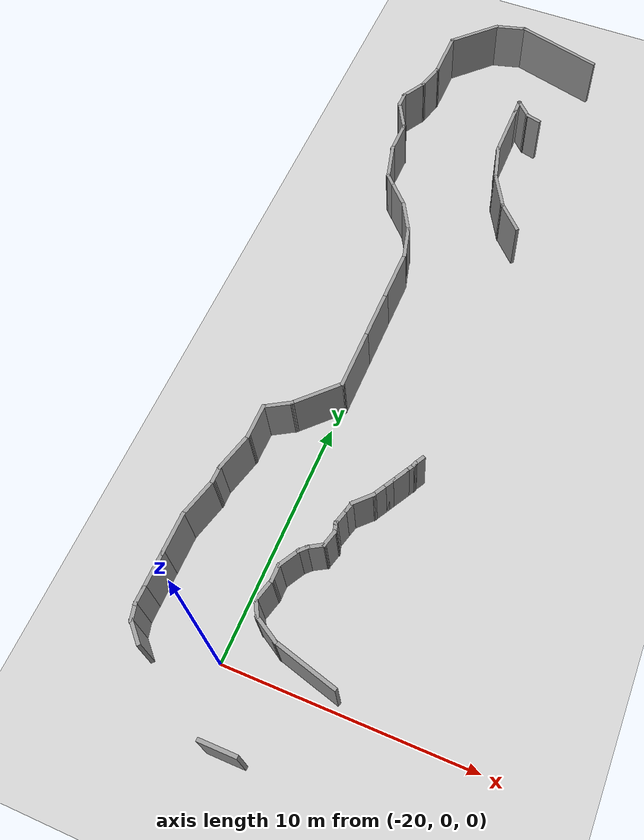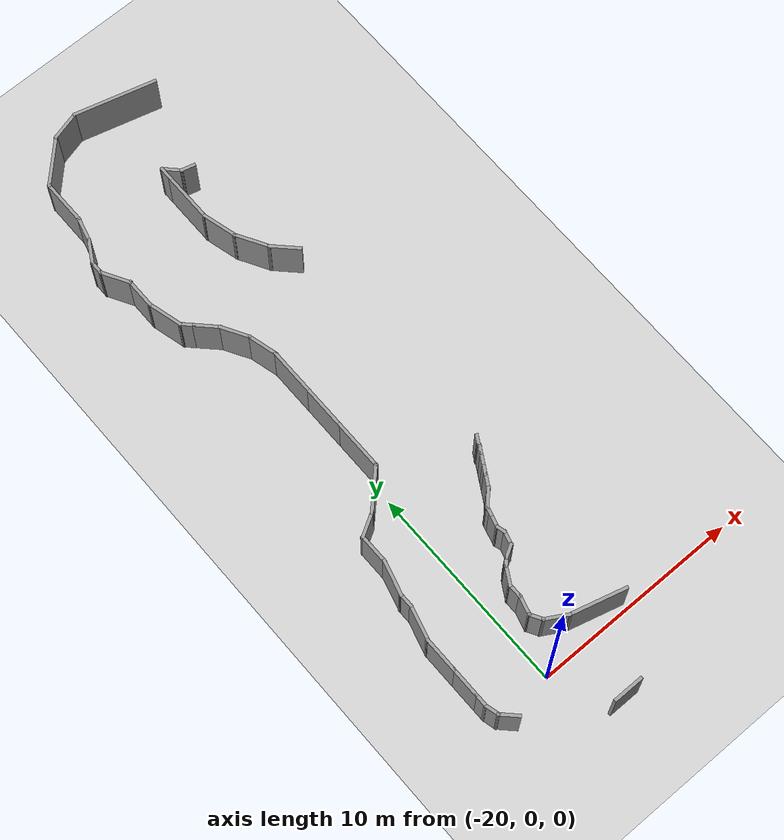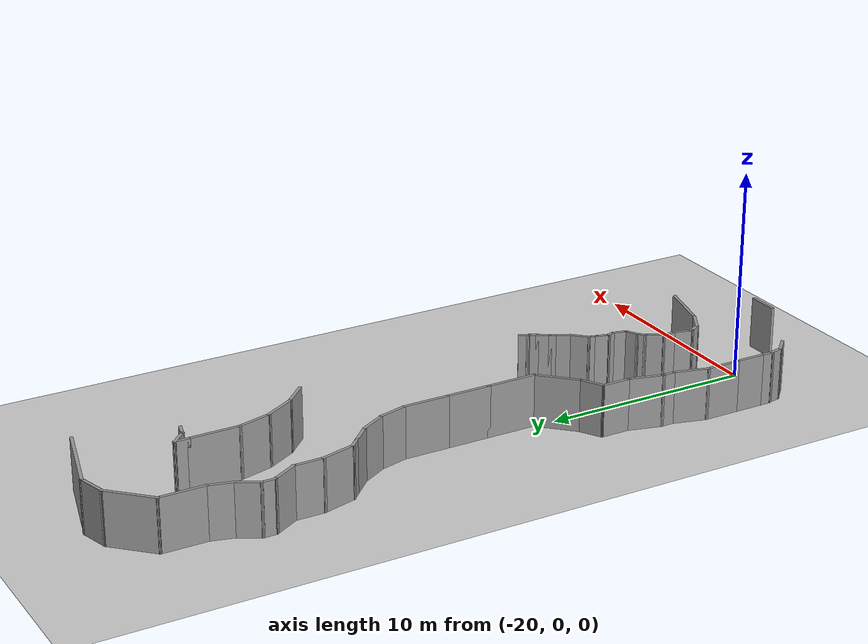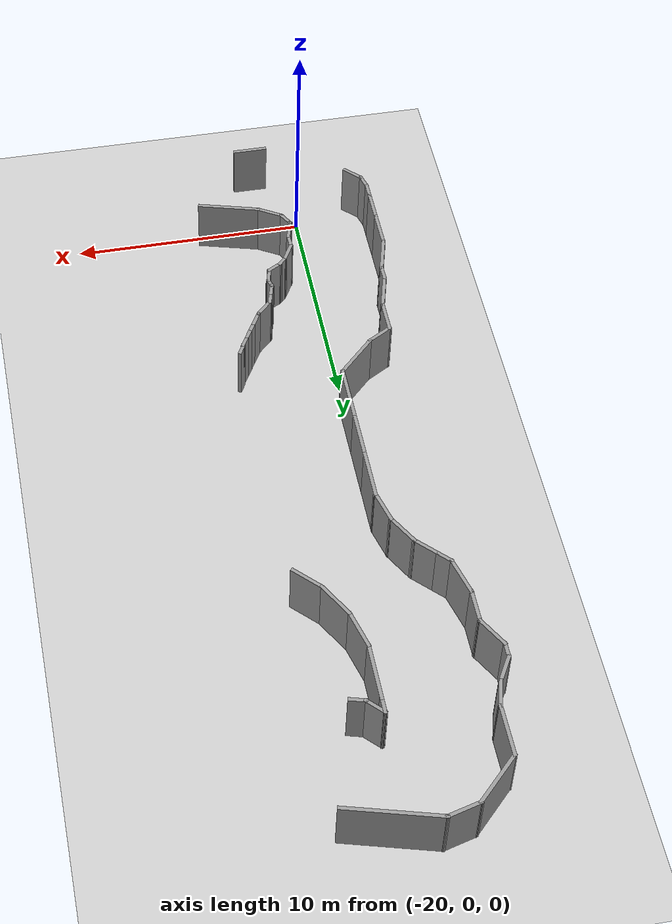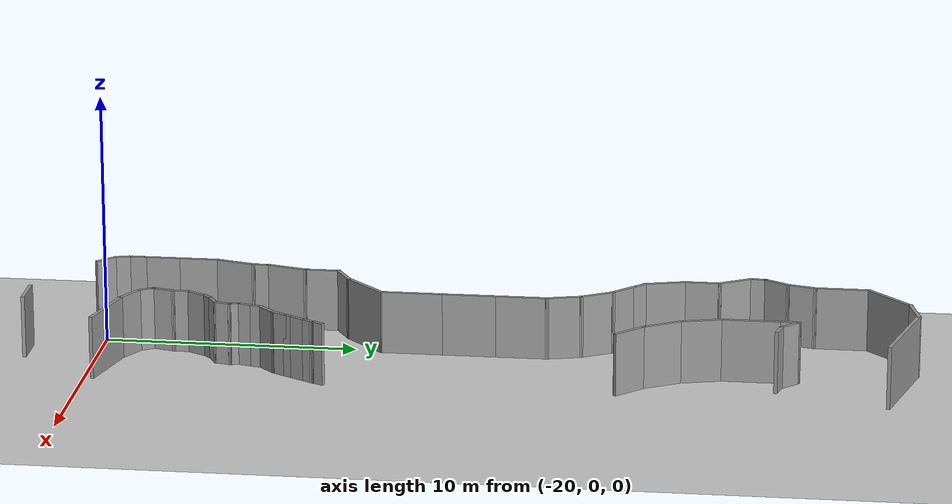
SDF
<sdf version="1.7">
 <world name="default">
  <model name="ground_plane">
   <static>1</static>
   <link name="link">
    <collision name="collision">
     <geometry><plane><normal>0 0 1</normal><size>100 100</size></plane></geometry>
     <surface><friction><ode><mu>100</mu><mu2>50</mu2></ode></friction></surface>
    </collision>
    <visual name="visual">
     <cast_shadows>0</cast_shadows>
     <geometry><plane><normal>0 0 1</normal><size>100 100</size></plane></geometry>
     <material>
      <script><uri>file://media/materials/scripts/gazebo.material</uri><name>Gazebo/Grey</name></script>
     </material>
    </visual>
   </link>
  </model>
  <model name="Untitled">
   <pose>-1.78886 14.7141 0 0 -0 0</pose>
   <link name="Wall_171">
    <collision name="Wall_171_Collision">
     <geometry><box><size>4 0.15 2.5</size></box></geometry>
     <pose>0 0 1.25 0 -0 0</pose>
    </collision>
    <visual name="Wall_171_Visual">
     <pose>0 0 1.25 0 -0 0</pose>
     <geometry><box><size>4 0.15 2.5</size></box></geometry>
     <material>
      <script><uri>file://media/materials/scripts/gazebo.material</uri><name>Gazebo/Grey</name></script>
      <ambient>1 1 1 1</ambient>
     </material>
     <meta><layer>0</layer></meta>
    </visual>
    <pose>-15.7135 16.8231 0 0 -0 2.87979</pose>
   </link>
   <link name="Wall_172">
    <collision name="Wall_172_Collision">
     <geometry><box><size>1.5 0.15 2.5</size></box></geometry>
     <pose>0 0 1.25 0 -0 0</pose>
    </collision>
    <visual name="Wall_172_Visual">
     <pose>0 0 1.25 0 -0 0</pose>
     <geometry><box><size>1.5 0.15 2.5</size></box></geometry>
     <material>
      <script><uri>file://media/materials/scripts/gazebo.material</uri><name>Gazebo/Grey</name></script>
      <ambient>1 1 1 1</ambient>
     </material>
     <meta><layer>0</layer></meta>
    </visual>
    <pose>-18.2249 17.1466 0 0 -0 -2.87979</pose>
   </link>
   <link name="Wall_173">
    <collision name="Wall_173_Collision">
     <geometry><box><size>2.5 0.15 2.5</size></box></geometry>
     <pose>0 0 1.25 0 -0 0</pose>
    </collision>
    <visual name="Wall_173_Visual">
     <pose>0 0 1.25 0 -0 0</pose>
     <geometry><box><size>2.5 0.15 2.5</size></box></geometry>
     <material>
      <script><uri>file://media/materials/scripts/gazebo.material</uri><name>Gazebo/Grey</name></script>
      <ambient>1 1 1 1</ambient>
     </material>
     <meta><layer>0</layer></meta>
    </visual>
    <pose>-19.7077 16.1411 0 0 -0 -2.35619</pose>
   </link>
   <link name="Wall_174">
    <collision name="Wall_174_Collision">
     <geometry><box><size>2.25 0.15 2.5</size></box></geometry>
     <pose>0 0 1.25 0 -0 0</pose>
    </collision>
    <visual name="Wall_174_Visual">
     <pose>0 0 1.25 0 -0 0</pose>
     <geometry><box><size>2.25 0.15 2.5</size></box></geometry>
     <material>
      <script><uri>file://media/materials/scripts/gazebo.material</uri><name>Gazebo/Grey</name></script>
      <ambient>1 1 1 1</ambient>
     </material>
     <meta><layer>0</layer></meta>
    </visual>
    <pose>-20.5386 14.2602 0 0 -0 -1.5708</pose>
   </link>
   <link name="Wall_175">
    <collision name="Wall_175_Collision">
     <geometry><box><size>1.25 0.15 2.5</size></box></geometry>
     <pose>0 0 1.25 0 -0 0</pose>
    </collision>
    <visual name="Wall_175_Visual">
     <pose>0 0 1.25 0 -0 0</pose>
     <geometry><box><size>1.25 0.15 2.5</size></box></geometry>
     <material>
      <script><uri>file://media/materials/scripts/gazebo.material</uri><name>Gazebo/Grey</name></script>
      <ambient>1 1 1 1</ambient>
     </material>
     <meta><layer>0</layer></meta>
    </visual>
    <pose>-20.6809 12.679 0 0 -0 -1.8326</pose>
   </link>
   <link name="Wall_176">
    <collision name="Wall_176_Collision">
     <geometry><box><size>1.25 0.15 2.5</size></box></geometry>
     <pose>0 0 1.25 0 -0 0</pose>
    </collision>
    <visual name="Wall_176_Visual">
     <pose>0 0 1.25 0 -0 0</pose>
     <geometry><box><size>1.25 0.15 2.5</size></box></geometry>
     <material>
      <script><uri>file://media/materials/scripts/gazebo.material</uri><name>Gazebo/Grey</name></script>
      <ambient>1 1 1 1</ambient>
     </material>
     <meta><layer>0</layer></meta>
    </visual>
    <pose>-21.0983 11.6714 0 0 -0 -2.0944</pose>
   </link>
   <link name="Wall_177">
    <collision name="Wall_177_Collision">
     <geometry><box><size>0.75 0.15 2.5</size></box></geometry>
     <pose>0 0 1.25 0 -0 0</pose>
    </collision>
    <visual name="Wall_177_Visual">
     <pose>0 0 1.25 0 -0 0</pose>
     <geometry><box><size>0.75 0.15 2.5</size></box></geometry>
     <material>
      <script><uri>file://media/materials/scripts/gazebo.material</uri><name>Gazebo/Grey</name></script>
      <ambient>1 1 1 1</ambient>
     </material>
     <meta><layer>0</layer></meta>
    </visual>
    <pose>-21.3733 10.8951 0 0 -0 -1.5708</pose>
   </link>
   <link name="Wall_178">
    <collision name="Wall_178_Collision">
     <geometry><box><size>1.5 0.15 2.5</size></box></geometry>
     <pose>0 0 1.25 0 -0 0</pose>
    </collision>
    <visual name="Wall_178_Visual">
     <pose>0 0 1.25 0 -0 0</pose>
     <geometry><box><size>1.5 0.15 2.5</size></box></geometry>
     <material>
      <script><uri>file://media/materials/scripts/gazebo.material</uri><name>Gazebo/Grey</name></script>
      <ambient>1 1 1 1</ambient>
     </material>
     <meta><layer>0</layer></meta>
    </visual>
    <pose>-21.0358 10.0105 0 0 -0 -1.0472</pose>
   </link>
   <link name="Wall_179">
    <collision name="Wall_179_Collision">
     <geometry><box><size>1.5 0.15 2.5</size></box></geometry>
     <pose>0 0 1.25 0 -0 0</pose>
    </collision>
    <visual name="Wall_179_Visual">
     <pose>0 0 1.25 0 -0 0</pose>
     <geometry><box><size>1.5 0.15 2.5</size></box></geometry>
     <material>
      <script><uri>file://media/materials/scripts/gazebo.material</uri><name>Gazebo/Grey</name></script>
      <ambient>1 1 1 1</ambient>
     </material>
     <meta><layer>0</layer></meta>
    </visual>
    <pose>-20.6983 8.75094 0 0 -0 -1.5708</pose>
   </link>
   <link name="Wall_180">
    <collision name="Wall_180_Collision">
     <geometry><box><size>1.75 0.15 2.5</size></box></geometry>
     <pose>0 0 1.25 0 -0 0</pose>
    </collision>
    <visual name="Wall_180_Visual">
     <pose>0 0 1.25 0 -0 0</pose>
     <geometry><box><size>1.75 0.15 2.5</size></box></geometry>
     <material>
      <script><uri>file://media/materials/scripts/gazebo.material</uri><name>Gazebo/Grey</name></script>
      <ambient>1 1 1 1</ambient>
     </material>
     <meta><layer>0</layer></meta>
    </visual>
    <pose>-20.4912 7.3032 0 0 -0 -1.309</pose>
   </link>
   <link name="Wall_181">
    <collision name="Wall_181_Collision">
     <geometry><box><size>0.75 0.15 2.5</size></box></geometry>
     <pose>0 0 1.25 0 -0 0</pose>
    </collision>
    <visual name="Wall_181_Visual">
     <pose>0 0 1.25 0 -0 0</pose>
     <geometry><box><size>0.75 0.15 2.5</size></box></geometry>
     <material>
      <script><uri>file://media/materials/scripts/gazebo.material</uri><name>Gazebo/Grey</name></script>
      <ambient>1 1 1 1</ambient>
     </material>
     <meta><layer>0</layer></meta>
    </visual>
    <pose>-20.072 6.31833 0 0 -0 -0.785398</pose>
   </link>
   <link name="Wall_182">
    <collision name="Wall_182_Collision">
     <geometry><box><size>1.25 0.15 2.5</size></box></geometry>
     <pose>0 0 1.25 0 -0 0</pose>
    </collision>
    <visual name="Wall_182_Visual">
     <pose>0 0 1.25 0 -0 0</pose>
     <geometry><box><size>1.25 0.15 2.5</size></box></geometry>
     <material>
      <script><uri>file://media/materials/scripts/gazebo.material</uri><name>Gazebo/Grey</name></script>
      <ambient>1 1 1 1</ambient>
     </material>
     <meta><layer>0</layer></meta>
    </visual>
    <pose>-19.471 5.71729 0 0 -0 -0.785398</pose>
   </link>
   <link name="Wall_183">
    <collision name="Wall_183_Collision">
     <geometry><box><size>1.5 0.15 2.5</size></box></geometry>
     <pose>0 0 1.25 0 -0 0</pose>
    </collision>
    <visual name="Wall_183_Visual">
     <pose>0 0 1.25 0 -0 0</pose>
     <geometry><box><size>1.5 0.15 2.5</size></box></geometry>
     <material>
      <script><uri>file://media/materials/scripts/gazebo.material</uri><name>Gazebo/Grey</name></script>
      <ambient>1 1 1 1</ambient>
     </material>
     <meta><layer>0</layer></meta>
    </visual>
    <pose>-18.7446 4.74381 0 0 -0 -1.0472</pose>
   </link>
   <link name="Wall_184">
    <collision name="Wall_184_Collision">
     <geometry><box><size>1.5 0.15 2.5</size></box></geometry>
     <pose>0 0 1.25 0 -0 0</pose>
    </collision>
    <visual name="Wall_184_Visual">
     <pose>0 0 1.25 0 -0 0</pose>
     <geometry><box><size>1.5 0.15 2.5</size></box></geometry>
     <material>
      <script><uri>file://media/materials/scripts/gazebo.material</uri><name>Gazebo/Grey</name></script>
      <ambient>1 1 1 1</ambient>
     </material>
     <meta><layer>0</layer></meta>
    </visual>
    <pose>-18.2324 3.50724 0 0 -0 -1.309</pose>
   </link>
   <link name="Wall_185">
    <collision name="Wall_185_Collision">
     <geometry><box><size>2.25 0.15 2.5</size></box></geometry>
     <pose>0 0 1.25 0 -0 0</pose>
    </collision>
    <visual name="Wall_185_Visual">
     <pose>0 0 1.25 0 -0 0</pose>
     <geometry><box><size>2.25 0.15 2.5</size></box></geometry>
     <material>
      <script><uri>file://media/materials/scripts/gazebo.material</uri><name>Gazebo/Grey</name></script>
      <ambient>1 1 1 1</ambient>
     </material>
     <meta><layer>0</layer></meta>
    </visual>
    <pose>-18.0577 1.80524 0 0 -0 -1.5708</pose>
   </link>
   <link name="Wall_186">
    <collision name="Wall_186_Collision">
     <geometry><box><size>2.25 0.15 2.5</size></box></geometry>
     <pose>0 0 1.25 0 -0 0</pose>
    </collision>
    <visual name="Wall_186_Visual">
     <pose>0 0 1.25 0 -0 0</pose>
     <geometry><box><size>2.25 0.15 2.5</size></box></geometry>
     <material>
      <script><uri>file://media/materials/scripts/gazebo.material</uri><name>Gazebo/Grey</name></script>
      <ambient>1 1 1 1</ambient>
     </material>
     <meta><layer>0</layer></meta>
    </visual>
    <pose>-18.0577 -0.294755 0 0 -0 -1.5708</pose>
   </link>
   <link name="Wall_187">
    <collision name="Wall_187_Collision">
     <geometry><box><size>2.5 0.15 2.5</size></box></geometry>
     <pose>0 0 1.25 0 -0 0</pose>
    </collision>
    <visual name="Wall_187_Visual">
     <pose>0 0 1.25 0 -0 0</pose>
     <geometry><box><size>2.5 0.15 2.5</size></box></geometry>
     <material>
      <script><uri>file://media/materials/scripts/gazebo.material</uri><name>Gazebo/Grey</name></script>
      <ambient>1 1 1 1</ambient>
     </material>
     <meta><layer>0</layer></meta>
    </visual>
    <pose>-18.0577 -2.51975 0 0 -0 -1.5708</pose>
   </link>
   <link name="Wall_188">
    <collision name="Wall_188_Collision">
     <geometry><box><size>2.25 0.15 2.5</size></box></geometry>
     <pose>0 0 1.25 0 -0 0</pose>
    </collision>
    <visual name="Wall_188_Visual">
     <pose>0 0 1.25 0 -0 0</pose>
     <geometry><box><size>2.25 0.15 2.5</size></box></geometry>
     <material>
      <script><uri>file://media/materials/scripts/gazebo.material</uri><name>Gazebo/Grey</name></script>
      <ambient>1 1 1 1</ambient>
     </material>
     <meta><layer>0</layer></meta>
    </visual>
    <pose>-18.8001 -4.43722 0 0 -0 -2.35619</pose>
   </link>
   <link name="Wall_189">
    <collision name="Wall_189_Collision">
     <geometry><box><size>1.25 0.15 2.5</size></box></geometry>
     <pose>0 0 1.25 0 -0 0</pose>
    </collision>
    <visual name="Wall_189_Visual">
     <pose>0 0 1.25 0 -0 0</pose>
     <geometry><box><size>1.25 0.15 2.5</size></box></geometry>
     <material>
      <script><uri>file://media/materials/scripts/gazebo.material</uri><name>Gazebo/Grey</name></script>
      <ambient>1 1 1 1</ambient>
     </material>
     <meta><layer>0</layer></meta>
    </visual>
    <pose>-20.0189 -5.45468 0 0 -0 -2.61799</pose>
   </link>
   <link name="Wall_190">
    <collision name="Wall_190_Collision">
     <geometry><box><size>1.5 0.15 2.5</size></box></geometry>
     <pose>0 0 1.25 0 -0 0</pose>
    </collision>
    <visual name="Wall_190_Visual">
     <pose>0 0 1.25 0 -0 0</pose>
     <geometry><box><size>1.5 0.15 2.5</size></box></geometry>
     <material>
      <script><uri>file://media/materials/scripts/gazebo.material</uri><name>Gazebo/Grey</name></script>
      <ambient>1 1 1 1</ambient>
     </material>
     <meta><layer>0</layer></meta>
    </visual>
    <pose>-20.4952 -6.40468 0 0 -0 -1.5708</pose>
   </link>
   <link name="Wall_191">
    <collision name="Wall_191_Collision">
     <geometry><box><size>1.75 0.15 2.5</size></box></geometry>
     <pose>0 0 1.25 0 -0 0</pose>
    </collision>
    <visual name="Wall_191_Visual">
     <pose>0 0 1.25 0 -0 0</pose>
     <geometry><box><size>1.75 0.15 2.5</size></box></geometry>
     <material>
      <script><uri>file://media/materials/scripts/gazebo.material</uri><name>Gazebo/Grey</name></script>
      <ambient>1 1 1 1</ambient>
     </material>
     <meta><layer>0</layer></meta>
    </visual>
    <pose>-20.7023 -7.85242 0 0 -0 -1.8326</pose>
   </link>
   <link name="Wall_193">
    <collision name="Wall_193_Collision">
     <geometry><box><size>0.75 0.15 2.5</size></box></geometry>
     <pose>0 0 1.25 0 -0 0</pose>
    </collision>
    <visual name="Wall_193_Visual">
     <pose>0 0 1.25 0 -0 0</pose>
     <geometry><box><size>0.75 0.15 2.5</size></box></geometry>
     <material>
      <script><uri>file://media/materials/scripts/gazebo.material</uri><name>Gazebo/Grey</name></script>
      <ambient>1 1 1 1</ambient>
     </material>
     <meta><layer>0</layer></meta>
    </visual>
    <pose>-20.9093 -8.92516 0 0 -0 -1.5708</pose>
   </link>
   <link name="Wall_194">
    <collision name="Wall_194_Collision">
     <geometry><box><size>1.75 0.15 2.5</size></box></geometry>
     <pose>0 0 1.25 0 -0 0</pose>
    </collision>
    <visual name="Wall_194_Visual">
     <pose>0 0 1.25 0 -0 0</pose>
     <geometry><box><size>1.75 0.15 2.5</size></box></geometry>
     <material>
      <script><uri>file://media/materials/scripts/gazebo.material</uri><name>Gazebo/Grey</name></script>
      <ambient>1 1 1 1</ambient>
     </material>
     <meta><layer>0</layer></meta>
    </visual>
    <pose>-21.1164 -9.9979 0 0 -0 -1.8326</pose>
   </link>
   <link name="Wall_195">
    <collision name="Wall_195_Collision">
     <geometry><box><size>1.75 0.15 2.5</size></box></geometry>
     <pose>0 0 1.25 0 -0 0</pose>
    </collision>
    <visual name="Wall_195_Visual">
     <pose>0 0 1.25 0 -0 0</pose>
     <geometry><box><size>1.75 0.15 2.5</size></box></geometry>
     <material>
      <script><uri>file://media/materials/scripts/gazebo.material</uri><name>Gazebo/Grey</name></script>
      <ambient>1 1 1 1</ambient>
     </material>
     <meta><layer>0</layer></meta>
    </visual>
    <pose>-21.3234 -11.5706 0 0 -0 -1.5708</pose>
   </link>
   <link name="Wall_196">
    <collision name="Wall_196_Collision">
     <geometry><box><size>1.5 0.15 2.5</size></box></geometry>
     <pose>0 0 1.25 0 -0 0</pose>
    </collision>
    <visual name="Wall_196_Visual">
     <pose>0 0 1.25 0 -0 0</pose>
     <geometry><box><size>1.5 0.15 2.5</size></box></geometry>
     <material>
      <script><uri>file://media/materials/scripts/gazebo.material</uri><name>Gazebo/Grey</name></script>
      <ambient>1 1 1 1</ambient>
     </material>
     <meta><layer>0</layer></meta>
    </visual>
    <pose>-21.3234 -13.0456 0 0 -0 -1.5708</pose>
   </link>
   <link name="Wall_197">
    <collision name="Wall_197_Collision">
     <geometry><box><size>0.75 0.15 2.5</size></box></geometry>
     <pose>0 0 1.25 0 -0 0</pose>
    </collision>
    <visual name="Wall_197_Visual">
     <pose>0 0 1.25 0 -0 0</pose>
     <geometry><box><size>0.75 0.15 2.5</size></box></geometry>
     <material>
      <script><uri>file://media/materials/scripts/gazebo.material</uri><name>Gazebo/Grey</name></script>
      <ambient>1 1 1 1</ambient>
     </material>
     <meta><layer>0</layer></meta>
    </visual>
    <pose>-21.3234 -14.0206 0 0 -0 -1.5708</pose>
   </link>
   <link name="Wall_198">
    <collision name="Wall_198_Collision">
     <geometry><box><size>0.75 0.15 2.5</size></box></geometry>
     <pose>0 0 1.25 0 -0 0</pose>
    </collision>
    <visual name="Wall_198_Visual">
     <pose>0 0 1.25 0 -0 0</pose>
     <geometry><box><size>0.75 0.15 2.5</size></box></geometry>
     <material>
      <script><uri>file://media/materials/scripts/gazebo.material</uri><name>Gazebo/Grey</name></script>
      <ambient>1 1 1 1</ambient>
     </material>
     <meta><layer>0</layer></meta>
    </visual>
    <pose>-21.2458 -14.6104 0 0 -0 -1.309</pose>
   </link>
   <link name="Wall_199">
    <collision name="Wall_199_Collision">
     <geometry><box><size>1 0.15 2.5</size></box></geometry>
     <pose>0 0 1.25 0 -0 0</pose>
    </collision>
    <visual name="Wall_199_Visual">
     <pose>0 0 1.25 0 -0 0</pose>
     <geometry><box><size>1 0.15 2.5</size></box></geometry>
     <material>
      <script><uri>file://media/materials/scripts/gazebo.material</uri><name>Gazebo/Grey</name></script>
      <ambient>1 1 1 1</ambient>
     </material>
     <meta><layer>0</layer></meta>
    </visual>
    <pose>-20.8676 -15.2007 0 0 -0 -0.785398</pose>
   </link>
   <link name="Wall_201">
    <collision name="Wall_201_Collision">
     <geometry><box><size>2.75 0.15 2.5</size></box></geometry>
     <pose>0 0 1.25 0 -0 0</pose>
    </collision>
    <visual name="Wall_201_Visual">
     <pose>0 0 1.25 0 -0 0</pose>
     <geometry><box><size>2.75 0.15 2.5</size></box></geometry>
     <material>
      <script><uri>file://media/materials/scripts/gazebo.material</uri><name>Gazebo/Grey</name></script>
      <ambient>1 1 1 1</ambient>
     </material>
     <meta><layer>0</layer></meta>
    </visual>
    <pose>-14.9781 -14.0408 0 0 -0 2.87979</pose>
   </link>
   <link name="Wall_202">
    <collision name="Wall_202_Collision">
     <geometry><box><size>1.25 0.15 2.5</size></box></geometry>
     <pose>0 0 1.25 0 -0 0</pose>
    </collision>
    <visual name="Wall_202_Visual">
     <pose>0 0 1.25 0 -0 0</pose>
     <geometry><box><size>1.25 0.15 2.5</size></box></geometry>
     <material>
      <script><uri>file://media/materials/scripts/gazebo.material</uri><name>Gazebo/Grey</name></script>
      <ambient>1 1 1 1</ambient>
     </material>
     <meta><layer>0</layer></meta>
    </visual>
    <pose>-16.7101 -13.4293 0 0 -0 2.61799</pose>
   </link>
   <link name="Wall_203">
    <collision name="Wall_203_Collision">
     <geometry><box><size>0.75 0.15 2.5</size></box></geometry>
     <pose>0 0 1.25 0 -0 0</pose>
    </collision>
    <visual name="Wall_203_Visual">
     <pose>0 0 1.25 0 -0 0</pose>
     <geometry><box><size>0.75 0.15 2.5</size></box></geometry>
     <material>
      <script><uri>file://media/materials/scripts/gazebo.material</uri><name>Gazebo/Grey</name></script>
      <ambient>1 1 1 1</ambient>
     </material>
     <meta><layer>0</layer></meta>
    </visual>
    <pose>-17.3364 -12.8945 0 0 -0 2.0944</pose>
   </link>
   <link name="Wall_204">
    <collision name="Wall_204_Collision">
     <geometry><box><size>1 0.15 2.5</size></box></geometry>
     <pose>0 0 1.25 0 -0 0</pose>
    </collision>
    <visual name="Wall_204_Visual">
     <pose>0 0 1.25 0 -0 0</pose>
     <geometry><box><size>1 0.15 2.5</size></box></geometry>
     <material>
      <script><uri>file://media/materials/scripts/gazebo.material</uri><name>Gazebo/Grey</name></script>
      <ambient>1 1 1 1</ambient>
     </material>
     <meta><layer>0</layer></meta>
    </visual>
    <pose>-17.3764 -12.2242 0 0 -0 1.309</pose>
   </link>
   <link name="Wall_205">
    <collision name="Wall_205_Collision">
     <geometry><box><size>0.75 0.15 2.5</size></box></geometry>
     <pose>0 0 1.25 0 -0 0</pose>
    </collision>
    <visual name="Wall_205_Visual">
     <pose>0 0 1.25 0 -0 0</pose>
     <geometry><box><size>0.75 0.15 2.5</size></box></geometry>
     <material>
      <script><uri>file://media/materials/scripts/gazebo.material</uri><name>Gazebo/Grey</name></script>
      <ambient>1 1 1 1</ambient>
     </material>
     <meta><layer>0</layer></meta>
    </visual>
    <pose>-17.2664 -11.5136 0 0 -0 1.5708</pose>
   </link>
   <link name="Wall_206">
    <collision name="Wall_206_Collision">
     <geometry><box><size>1 0.15 2.5</size></box></geometry>
     <pose>0 0 1.25 0 -0 0</pose>
    </collision>
    <visual name="Wall_206_Visual">
     <pose>0 0 1.25 0 -0 0</pose>
     <geometry><box><size>1 0.15 2.5</size></box></geometry>
     <material>
      <script><uri>file://media/materials/scripts/gazebo.material</uri><name>Gazebo/Grey</name></script>
      <ambient>1 1 1 1</ambient>
     </material>
     <meta><layer>0</layer></meta>
    </visual>
    <pose>-17.0539 -10.8456 0 0 -0 1.0472</pose>
   </link>
   <link name="Wall_207">
    <collision name="Wall_207_Collision">
     <geometry><box><size>0.5 0.15 2.5</size></box></geometry>
     <pose>0 0 1.25 0 -0 0</pose>
    </collision>
    <visual name="Wall_207_Visual">
     <pose>0 0 1.25 0 -0 0</pose>
     <geometry><box><size>0.5 0.15 2.5</size></box></geometry>
     <material>
      <script><uri>file://media/materials/scripts/gazebo.material</uri><name>Gazebo/Grey</name></script>
      <ambient>1 1 1 1</ambient>
     </material>
     <meta><layer>0</layer></meta>
    </visual>
    <pose>-16.7177 -10.3538 0 0 -0 0.785398</pose>
   </link>
   <link name="Wall_208">
    <collision name="Wall_208_Collision">
     <geometry><box><size>0.75 0.15 2.5</size></box></geometry>
     <pose>0 0 1.25 0 -0 0</pose>
    </collision>
    <visual name="Wall_208_Visual">
     <pose>0 0 1.25 0 -0 0</pose>
     <geometry><box><size>0.75 0.15 2.5</size></box></geometry>
     <material>
      <script><uri>file://media/materials/scripts/gazebo.material</uri><name>Gazebo/Grey</name></script>
      <ambient>1 1 1 1</ambient>
     </material>
     <meta><layer>0</layer></meta>
    </visual>
    <pose>-16.3341 -10.08 0 0 -0 0.523599</pose>
   </link>
   <link name="Wall_209">
    <collision name="Wall_209_Collision">
     <geometry><box><size>0.75 0.15 2.5</size></box></geometry>
     <pose>0 0 1.25 0 -0 0</pose>
    </collision>
    <visual name="Wall_209_Visual">
     <pose>0 0 1.25 0 -0 0</pose>
     <geometry><box><size>0.75 0.15 2.5</size></box></geometry>
     <material>
      <script><uri>file://media/materials/scripts/gazebo.material</uri><name>Gazebo/Grey</name></script>
      <ambient>1 1 1 1</ambient>
     </material>
     <meta><layer>0</layer></meta>
    </visual>
    <pose>-15.9967 -9.64025 0 0 -0 1.309</pose>
   </link>
   <link name="Wall_210">
    <collision name="Wall_210_Collision">
     <geometry><box><size>0.5 0.15 2.5</size></box></geometry>
     <pose>0 0 1.25 0 -0 0</pose>
    </collision>
    <visual name="Wall_210_Visual">
     <pose>0 0 1.25 0 -0 0</pose>
     <geometry><box><size>0.5 0.15 2.5</size></box></geometry>
     <material>
      <script><uri>file://media/materials/scripts/gazebo.material</uri><name>Gazebo/Grey</name></script>
      <ambient>1 1 1 1</ambient>
     </material>
     <meta><layer>0</layer></meta>
    </visual>
    <pose>-15.9643 -9.18143 0 0 -0 1.8326</pose>
   </link>
   <link name="Wall_211">
    <collision name="Wall_211_Collision">
     <geometry><box><size>0.75 0.15 2.5</size></box></geometry>
     <pose>0 0 1.25 0 -0 0</pose>
    </collision>
    <visual name="Wall_211_Visual">
     <pose>0 0 1.25 0 -0 0</pose>
     <geometry><box><size>0.75 0.15 2.5</size></box></geometry>
     <material>
      <script><uri>file://media/materials/scripts/gazebo.material</uri><name>Gazebo/Grey</name></script>
      <ambient>1 1 1 1</ambient>
     </material>
     <meta><layer>0</layer></meta>
    </visual>
    <pose>-15.932 -8.72262 0 0 -0 1.309</pose>
   </link>
   <link name="Wall_212">
    <collision name="Wall_212_Collision">
     <geometry><box><size>0.5 0.15 2.5</size></box></geometry>
     <pose>0 0 1.25 0 -0 0</pose>
    </collision>
    <visual name="Wall_212_Visual">
     <pose>0 0 1.25 0 -0 0</pose>
     <geometry><box><size>0.5 0.15 2.5</size></box></geometry>
     <material>
      <script><uri>file://media/materials/scripts/gazebo.material</uri><name>Gazebo/Grey</name></script>
      <ambient>1 1 1 1</ambient>
     </material>
     <meta><layer>0</layer></meta>
    </visual>
    <pose>-15.809 -8.2638 0 0 -0 1.309</pose>
   </link>
   <link name="Wall_213">
    <collision name="Wall_213_Collision">
     <geometry><box><size>1 0.15 2.5</size></box></geometry>
     <pose>0 0 1.25 0 -0 0</pose>
    </collision>
    <visual name="Wall_213_Visual">
     <pose>0 0 1.25 0 -0 0</pose>
     <geometry><box><size>1 0.15 2.5</size></box></geometry>
     <material>
      <script><uri>file://media/materials/scripts/gazebo.material</uri><name>Gazebo/Grey</name></script>
      <ambient>1 1 1 1</ambient>
     </material>
     <meta><layer>0</layer></meta>
    </visual>
    <pose>-15.4632 -7.79425 0 0 -0 0.785398</pose>
   </link>
   <link name="Wall_214">
    <collision name="Wall_214_Collision">
     <geometry><box><size>0.75 0.15 2.5</size></box></geometry>
     <pose>0 0 1.25 0 -0 0</pose>
    </collision>
    <visual name="Wall_214_Visual">
     <pose>0 0 1.25 0 -0 0</pose>
     <geometry><box><size>0.75 0.15 2.5</size></box></geometry>
     <material>
      <script><uri>file://media/materials/scripts/gazebo.material</uri><name>Gazebo/Grey</name></script>
      <ambient>1 1 1 1</ambient>
     </material>
     <meta><layer>0</layer></meta>
    </visual>
    <pose>-15.0127 -7.23392 0 0 -0 1.0472</pose>
   </link>
   <link name="Wall_215">
    <collision name="Wall_215_Collision">
     <geometry><box><size>0.5 0.15 2.5</size></box></geometry>
     <pose>0 0 1.25 0 -0 0</pose>
    </collision>
    <visual name="Wall_215_Visual">
     <pose>0 0 1.25 0 -0 0</pose>
     <geometry><box><size>0.5 0.15 2.5</size></box></geometry>
     <material>
      <script><uri>file://media/materials/scripts/gazebo.material</uri><name>Gazebo/Grey</name></script>
      <ambient>1 1 1 1</ambient>
     </material>
     <meta><layer>0</layer></meta>
    </visual>
    <pose>-14.7752 -6.82256 0 0 -0 1.0472</pose>
   </link>
   <link name="Wall_216">
    <collision name="Wall_216_Collision">
     <geometry><box><size>0.75 0.15 2.5</size></box></geometry>
     <pose>0 0 1.25 0 -0 0</pose>
    </collision>
    <visual name="Wall_216_Visual">
     <pose>0 0 1.25 0 -0 0</pose>
     <geometry><box><size>0.75 0.15 2.5</size></box></geometry>
     <material>
      <script><uri>file://media/materials/scripts/gazebo.material</uri><name>Gazebo/Grey</name></script>
      <ambient>1 1 1 1</ambient>
     </material>
     <meta><layer>0</layer></meta>
    </visual>
    <pose>-14.5377 -6.4112 0 0 -0 1.0472</pose>
   </link>
   <link name="Wall_217">
    <collision name="Wall_217_Collision">
     <geometry><box><size>0.5 0.15 2.5</size></box></geometry>
     <pose>0 0 1.25 0 -0 0</pose>
    </collision>
    <visual name="Wall_217_Visual">
     <pose>0 0 1.25 0 -0 0</pose>
     <geometry><box><size>0.5 0.15 2.5</size></box></geometry>
     <material>
      <script><uri>file://media/materials/scripts/gazebo.material</uri><name>Gazebo/Grey</name></script>
      <ambient>1 1 1 1</ambient>
     </material>
     <meta><layer>0</layer></meta>
    </visual>
    <pose>-14.3002 -5.99983 0 0 -0 1.0472</pose>
   </link>
   <link name="Wall_218">
    <collision name="Wall_218_Collision">
     <geometry><box><size>0.25 0.15 2.5</size></box></geometry>
     <pose>0 0 1.25 0 -0 0</pose>
    </collision>
    <visual name="Wall_218_Visual">
     <pose>0 0 1.25 0 -0 0</pose>
     <geometry><box><size>0.25 0.15 2.5</size></box></geometry>
     <material>
      <script><uri>file://media/materials/scripts/gazebo.material</uri><name>Gazebo/Grey</name></script>
      <ambient>1 1 1 1</ambient>
     </material>
     <meta><layer>0</layer></meta>
    </visual>
    <pose>-14.1998 -5.79998 0 0 -0 1.309</pose>
   </link>
   <link name="Wall_219">
    <collision name="Wall_219_Collision">
     <geometry><box><size>0.5 0.15 2.5</size></box></geometry>
     <pose>0 0 1.25 0 -0 0</pose>
    </collision>
    <visual name="Wall_219_Visual">
     <pose>0 0 1.25 0 -0 0</pose>
     <geometry><box><size>0.5 0.15 2.5</size></box></geometry>
     <material>
      <script><uri>file://media/materials/scripts/gazebo.material</uri><name>Gazebo/Grey</name></script>
      <ambient>1 1 1 1</ambient>
     </material>
     <meta><layer>0</layer></meta>
    </visual>
    <pose>-14.0993 -5.60013 0 0 -0 1.0472</pose>
   </link>
   <link name="Wall_239">
    <collision name="Wall_239_Collision">
     <geometry><box><size>1.5 0.15 2.5</size></box></geometry>
     <pose>0 0 1.25 0 -0 0</pose>
    </collision>
    <visual name="Wall_239_Visual">
     <pose>0 0 1.25 0 -0 0</pose>
     <geometry><box><size>1.5 0.15 2.5</size></box></geometry>
     <material>
      <script><uri>file://media/materials/scripts/gazebo.material</uri><name>Gazebo/Grey</name></script>
      <ambient>1 1 1 1</ambient>
     </material>
     <meta><layer>0</layer></meta>
    </visual>
    <pose>-14.6131 6.38195 0 0 -0 2.35619</pose>
   </link>
   <link name="Wall_240">
    <collision name="Wall_240_Collision">
     <geometry><box><size>1.75 0.15 2.5</size></box></geometry>
     <pose>0 0 1.25 0 -0 0</pose>
    </collision>
    <visual name="Wall_240_Visual">
     <pose>0 0 1.25 0 -0 0</pose>
     <geometry><box><size>1.75 0.15 2.5</size></box></geometry>
     <material>
      <script><uri>file://media/materials/scripts/gazebo.material</uri><name>Gazebo/Grey</name></script>
      <ambient>1 1 1 1</ambient>
     </material>
     <meta><layer>0</layer></meta>
    </visual>
    <pose>-15.4904 7.55207 0 0 -0 2.0944</pose>
   </link>
   <link name="Wall_241">
    <collision name="Wall_241_Collision">
     <geometry><box><size>1.75 0.15 2.5</size></box></geometry>
     <pose>0 0 1.25 0 -0 0</pose>
    </collision>
    <visual name="Wall_241_Visual">
     <pose>0 0 1.25 0 -0 0</pose>
     <geometry><box><size>1.75 0.15 2.5</size></box></geometry>
     <material>
      <script><uri>file://media/materials/scripts/gazebo.material</uri><name>Gazebo/Grey</name></script>
      <ambient>1 1 1 1</ambient>
     </material>
     <meta><layer>0</layer></meta>
    </visual>
    <pose>-16.0974 9.01763 0 0 -0 1.8326</pose>
   </link>
   <link name="Wall_242">
    <collision name="Wall_242_Collision">
     <geometry><box><size>2.5 0.15 2.5</size></box></geometry>
     <pose>0 0 1.25 0 -0 0</pose>
    </collision>
    <visual name="Wall_242_Visual">
     <pose>0 0 1.25 0 -0 0</pose>
     <geometry><box><size>2.5 0.15 2.5</size></box></geometry>
     <material>
      <script><uri>file://media/materials/scripts/gazebo.material</uri><name>Gazebo/Grey</name></script>
      <ambient>1 1 1 1</ambient>
     </material>
     <meta><layer>0</layer></meta>
    </visual>
    <pose>-16.3045 10.9654 0 0 -0 1.5708</pose>
   </link>
   <link name="Wall_243">
    <collision name="Wall_243_Collision">
     <geometry><box><size>0.75 0.15 2.5</size></box></geometry>
     <pose>0 0 1.25 0 -0 0</pose>
    </collision>
    <visual name="Wall_243_Visual">
     <pose>0 0 1.25 0 -0 0</pose>
     <geometry><box><size>0.75 0.15 2.5</size></box></geometry>
     <material>
      <script><uri>file://media/materials/scripts/gazebo.material</uri><name>Gazebo/Grey</name></script>
      <ambient>1 1 1 1</ambient>
     </material>
     <meta><layer>0</layer></meta>
    </visual>
    <pose>-16.3045 12.4404 0 0 -0 1.5708</pose>
   </link>
   <link name="Wall_244">
    <collision name="Wall_244_Collision">
     <geometry><box><size>1 0.15 2.5</size></box></geometry>
     <pose>0 0 1.25 0 -0 0</pose>
    </collision>
    <visual name="Wall_244_Visual">
     <pose>0 0 1.25 0 -0 0</pose>
     <geometry><box><size>1 0.15 2.5</size></box></geometry>
     <material>
      <script><uri>file://media/materials/scripts/gazebo.material</uri><name>Gazebo/Grey</name></script>
      <ambient>1 1 1 1</ambient>
     </material>
     <meta><layer>0</layer></meta>
    </visual>
    <pose>-16.0039 12.4398 0 0 -0 -0.785398</pose>
   </link>
   <link name="Wall_245">
    <collision name="Wall_245_Collision">
     <geometry><box><size>0.75 0.15 2.5</size></box></geometry>
     <pose>0 0 1.25 0 -0 0</pose>
    </collision>
    <visual name="Wall_245_Visual">
     <pose>0 0 1.25 0 -0 0</pose>
     <geometry><box><size>0.75 0.15 2.5</size></box></geometry>
     <material>
      <script><uri>file://media/materials/scripts/gazebo.material</uri><name>Gazebo/Grey</name></script>
      <ambient>1 1 1 1</ambient>
     </material>
     <meta><layer>0</layer></meta>
    </visual>
    <pose>-15.4136 12.0617 0 0 -0 -0.261799</pose>
   </link>
   <link name="Wall_33">
    <collision name="Wall_33_Collision">
     <geometry><box><size>1.5 0.15 2.5</size></box></geometry>
     <pose>0 0 1.25 0 -0 0</pose>
    </collision>
    <visual name="Wall_33_Visual">
     <pose>0 0 1.25 0 -0 0</pose>
     <geometry><box><size>1.5 0.15 2.5</size></box></geometry>
     <material>
      <script><uri>file://media/materials/scripts/gazebo.material</uri><name>Gazebo/Grey</name></script>
      <ambient>1 1 1 1</ambient>
     </material>
     <meta><layer>0</layer></meta>
    </visual>
    <pose>-16.5248 -17.5273 0 0 -0 3.14159</pose>
   </link>
   <static>1</static>
  </model>
 </world>
</sdf>
